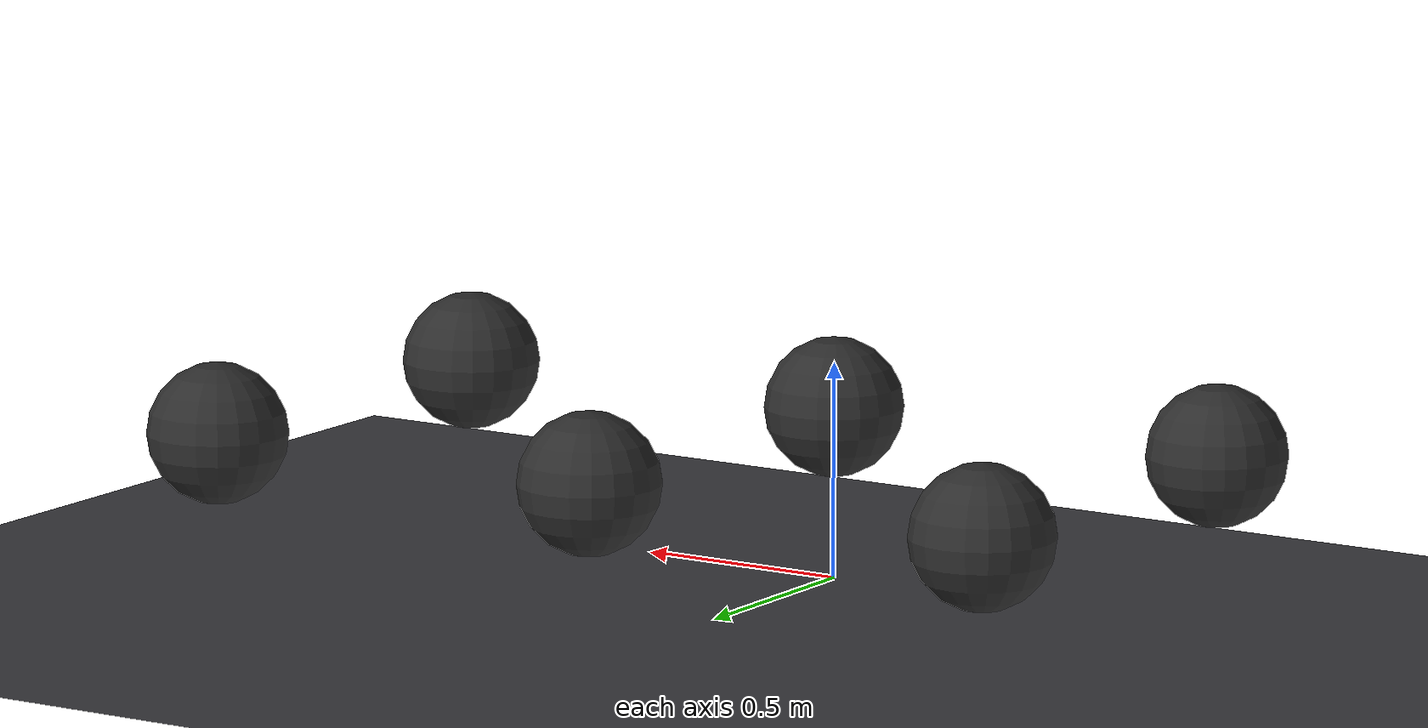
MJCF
<mujoco model="shadows">
  <asset>
    <texture name="floor_tex" type="2d" builtin="checker" width="512" height="512"
             rgb1="0.20 0.20 0.22" rgb2="0.28 0.28 0.30"/>
    <material name="floor" texture="floor_tex" texrepeat="8 8" texuniform="true"
              reflectance="0.3" roughness="0.1" metallic="0.1"/>
    <material name="default" rgba="0.18 0.18 0.18 1" roughness="0.85" metallic="0.0"/>
  </asset>

  <custom>
    <text name="filament.shadows.type" data="pcss"/>
  </custom>

  <worldbody>
    <camera name="default" pos="-2.047 0.554 1.700" xyaxes="-0.016 -1.000 0.000 0.632 -0.010 0.775"/>

    <geom name="ground" type="plane" size="6 6 0.05" material="floor"/>

    <light type="spot"  pos="-1.0 0 0.8" dir="0 0 -1" diffuse="0.8 0.5 0.5" cutoff="50" intensity="50000" bulbradius="0" softness="0.05"/>
    <geom type="sphere" pos="-1.0 0 0.4" size="0.16" material="default"/>

    <light type="spot"  pos=" 0.0 0 0.8" dir="0 0 -1" diffuse="0.5 0.8 0.5" cutoff="50" intensity="50000" bulbradius="0.025" softness="0.35"/>
    <geom type="sphere" pos=" 0.0 0 0.4" size="0.16" material="default"/>

    <light type="spot"  pos=" 1.0 0 0.8" dir="0 0 -1" diffuse="0.5 0.5 0.8" cutoff="50" intensity="50000" bulbradius="0.05" softness="0.75"/>
    <geom type="sphere" pos=" 1.0 0 0.4" size="0.16" material="default"/>

    <light type="spot"  pos="-1.0 1 0.8" dir="0 0 -1" diffuse="0.8 0.8 0.5" cutoff="50" intensity="50000" bulbradius="0.075" softness="0.05"/>
    <geom type="sphere" pos="-1.0 1 0.4" size="0.16" material="default"/>

    <light type="spot"  pos=" 0.0 1 0.8" dir="0 0 -1" diffuse="0.5 0.8 0.8" cutoff="50" intensity="50000" bulbradius="0.1" softness="0.35"/>
    <geom type="sphere" pos=" 0.0 1 0.4" size="0.16" material="default"/>

    <light type="spot"  pos=" 1.0 1 0.8" dir="0 0 -1" diffuse="0.8 0.5 0.8" cutoff="50" intensity="50000" bulbradius="0.125" softness="0.75"/>
    <geom type="sphere" pos=" 1.0 1 0.4" size="0.16" material="default"/>

  </worldbody>

</mujoco>
